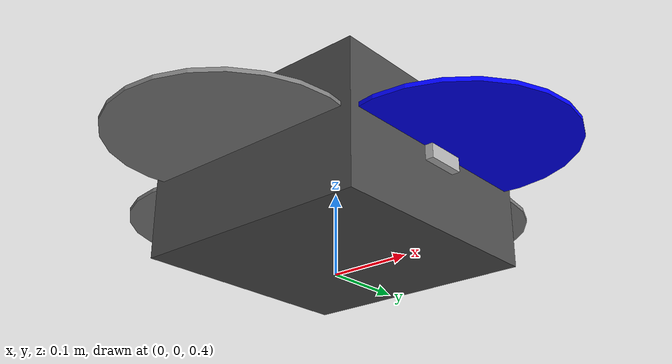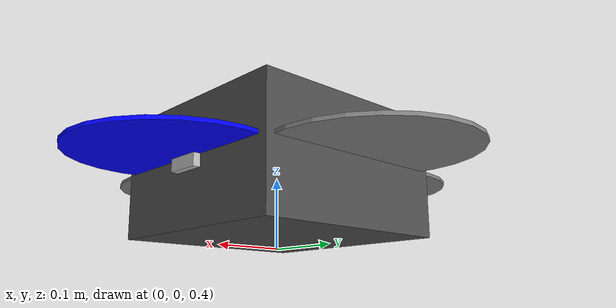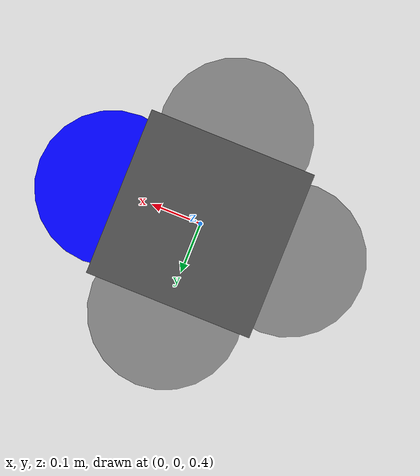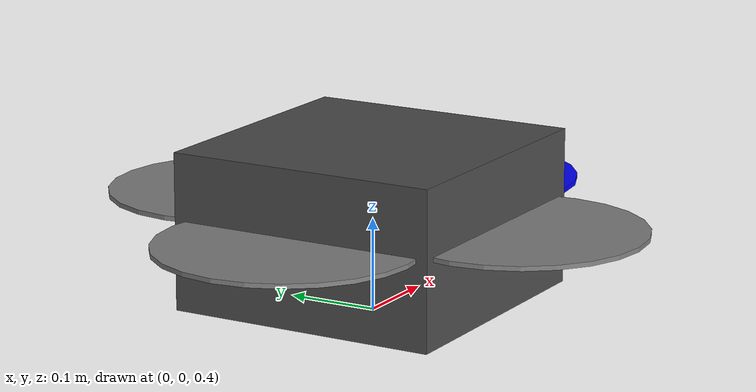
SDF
<?xml version="1.0"?>
<sdf version="1.6">
  <model name="X3">
    <pose>0 0 0.5 0 0 0</pose>
    <static>false</static>

    <link name="base_link">
      <pose>0 0 0 0 0 0</pose>
      <inertial>
        <pose>0 0 0 0 0 0</pose>
        <mass>1.4</mass>
        <inertia>
          <ixx>0.0122</ixx>
          <ixy>0.0</ixy>
          <ixz>0.0</ixz>
          <iyy>0.0122</iyy>
          <iyz>0.0</iyz>
          <izz>0.0210</izz>
        </inertia>
      </inertial>

      <visual name="base_visual">
        <pose>0 0 0 0 0 0</pose>
        <geometry>
          <box>
            <size>0.3 0.3 0.17</size>
          </box>
        </geometry>
        <material>
          <ambient>0.3 0.3 0.3 1</ambient>
          <diffuse>0.3 0.3 0.3 1</diffuse>
        </material>
      </visual>

      <collision name="base_collision">
        <pose>0 0 0 0 0 0</pose>
        <geometry>
          <box>
            <size>0.3 0.3 0.17</size>
          </box>
        </geometry>
      </collision>

      <sensor name="imu" type="imu">
        <always_on>true</always_on>
        <update_rate>200</update_rate>
        <topic>imu</topic>
      </sensor>
    </link>

    <link name="rotor_0">
      <pose>0.17 0 0.01 0 0 0</pose>
      <inertial>
        <pose>0 0 0 0 0 0</pose>
        <mass>0.005</mass>
        <inertia>
          <ixx>1.5e-6</ixx>
          <ixy>0.0</ixy>
          <ixz>0.0</ixz>
          <iyy>1.5e-6</iyy>
          <iyz>0.0</iyz>
          <izz>1.5e-6</izz>
        </inertia>
      </inertial>
      <visual name="rotor_0_visual">
        <pose>0 0 0 0 0 0</pose>
        <geometry>
          <cylinder>
            <radius>0.14</radius>
            <length>0.005</length>
          </cylinder>
        </geometry>
        <material>
          <ambient>0.0 0.0 1.0 1</ambient>
        </material>
      </visual>
    </link>

    <joint name="rotor_0_joint" type="revolute">
      <parent>base_link</parent>
      <child>rotor_0</child>
      <axis>
        <xyz>0 0 1</xyz>
        <limit>
          <lower>-1e16</lower>
          <upper>1e16</upper>
        </limit>
        <dynamics>
          <damping>0.001</damping>
        </dynamics>
      </axis>
    </joint>

    <link name="rotor_1">
      <pose>0 -0.17 0.01 0 0 0</pose>
      <inertial>
        <pose>0 0 0 0 0 0</pose>
        <mass>0.005</mass>
        <inertia>
          <ixx>1.5e-6</ixx>
          <ixy>0.0</ixy>
          <ixz>0.0</ixz>
          <iyy>1.5e-6</iyy>
          <iyz>0.0</iyz>
          <izz>1.5e-6</izz>
        </inertia>
      </inertial>
      <visual name="rotor_1_visual">
        <pose>0 0 0 0 0 0</pose>
        <geometry>
          <cylinder>
            <radius>0.14</radius>
            <length>0.005</length>
          </cylinder>
        </geometry>
        <material>
          <ambient>0.5 0.5 0.5 1</ambient>
        </material>
      </visual>
    </link>

    <joint name="rotor_1_joint" type="revolute">
      <parent>base_link</parent>
      <child>rotor_1</child>
      <axis>
        <xyz>0 0 1</xyz>
        <limit>
          <lower>-1e16</lower>
          <upper>1e16</upper>
        </limit>
        <dynamics>
          <damping>0.001</damping>
        </dynamics>
      </axis>
    </joint>

    <link name="rotor_2">
      <pose>-0.17 0 0.01 0 0 0</pose>
      <inertial>
        <pose>0 0 0 0 0 0</pose>
        <mass>0.005</mass>
        <inertia>
          <ixx>1.5e-6</ixx>
          <ixy>0.0</ixy>
          <ixz>0.0</ixz>
          <iyy>1.5e-6</iyy>
          <iyz>0.0</iyz>
          <izz>1.5e-6</izz>
        </inertia>
      </inertial>
      <visual name="rotor_2_visual">
        <pose>0 0 0 0 0 0</pose>
        <geometry>
          <cylinder>
            <radius>0.14</radius>
            <length>0.005</length>
          </cylinder>
        </geometry>
        <material>
          <ambient>0.5 0.5 0.5 1</ambient>
        </material>
      </visual>
    </link>

    <joint name="rotor_2_joint" type="revolute">
      <parent>base_link</parent>
      <child>rotor_2</child>
      <axis>
        <xyz>0 0 1</xyz>
        <limit>
          <lower>-1e16</lower>
          <upper>1e16</upper>
        </limit>
        <dynamics>
          <damping>0.001</damping>
        </dynamics>
      </axis>
    </joint>

    <link name="rotor_3">
      <pose>0 0.17 0.01 0 0 0</pose>
      <inertial>
        <pose>0 0 0 0 0 0</pose>
        <mass>0.005</mass>
        <inertia>
          <ixx>1.5e-6</ixx>
          <ixy>0.0</ixy>
          <ixz>0.0</ixz>
          <iyy>1.5e-6</iyy>
          <iyz>0.0</iyz>
          <izz>1.5e-6</izz>
        </inertia>
      </inertial>
      <visual name="rotor_3_visual">
        <pose>0 0 0 0 0 0</pose>
        <geometry>
          <cylinder>
            <radius>0.14</radius>
            <length>0.005</length>
          </cylinder>
        </geometry>
        <material>
          <ambient>0.5 0.5 0.5 1</ambient>
        </material>
      </visual>
    </link>

    <joint name="rotor_3_joint" type="revolute">
      <parent>base_link</parent>
      <child>rotor_3</child>
      <axis>
        <xyz>0 0 1</xyz>
        <limit>
          <lower>-1e16</lower>
          <upper>1e16</upper>
        </limit>
        <dynamics>
          <damping>0.001</damping>
        </dynamics>
      </axis>
    </joint>

    <link name="camera_link">
      <pose>0.15 0 0.0 0 0 0</pose>
      <inertial>
        <pose>0 0 0 0 0 0</pose>
        <mass>0.01</mass>
        <inertia>
          <ixx>0.00001</ixx>
          <ixy>0.0</ixy>
          <ixz>0.0</ixz>
          <iyy>0.00001</iyy>
          <iyz>0.0</iyz>
          <izz>0.00001</izz>
        </inertia>
      </inertial>
      <visual name="camera_visual">
        <pose>0 0 0 0 0 0</pose>
        <geometry>
          <box>
            <size>0.02 0.05 0.02</size>
          </box>
        </geometry>
      </visual>
      <sensor name="camera" type="camera">
        <camera>
          <horizontal_fov>1.047</horizontal_fov>
          <image>
            <width>640</width>
            <height>480</height>
          </image>
          <clip>
            <near>0.1</near>
            <far>100</far>
          </clip>
        </camera>
        <always_on>true</always_on>
        <update_rate>30</update_rate>
        <topic>camera/image</topic>
      </sensor>
    </link>

    <joint name="camera_joint" type="fixed">
      <parent>base_link</parent>
      <child>camera_link</child>
    </joint>

    <plugin filename="gz-sim-odometry-publisher-system" name="gz::sim::systems::OdometryPublisher">
      <odometry_topic>odometry</odometry_topic>
      <odometry_frame>world</odometry_frame>
      <robot_base_frame>base_link</robot_base_frame>
    </plugin>

    <plugin filename="gz-sim-multicopter-control-system" name="gz::sim::systems::MulticopterVelocityControl">
      <robotNamespace>X3</robotNamespace>
      <commandSubTopic>cmd_vel</commandSubTopic>
      <enableSubTopic>enable</enableSubTopic>
      <comLinkName>base_link</comLinkName>
      <velocityGain>2.7 2.7 2.7</velocityGain>
      <attitudeGain>2.0 3.0 0.15</attitudeGain>
      <angularRateGain>0.4 0.52 0.18</angularRateGain>
      <maximumLinearAcceleration>1 1 2</maximumLinearAcceleration>
      <maximumLinearVelocity>5 5 5</maximumLinearVelocity>
      <maximumAngularVelocity>3 3 3</maximumAngularVelocity>
      <linearVelocityNoiseMean>0 0 0</linearVelocityNoiseMean>
      <linearVelocityNoiseStdDev>0 0 0</linearVelocityNoiseStdDev>
      <angularVelocityNoiseMean>0 0 0</angularVelocityNoiseMean>
      <angularVelocityNoiseStdDev>0 0 0</angularVelocityNoiseStdDev>
      <rotorConfiguration>
        <rotor>
          <jointName>rotor_0_joint</jointName>
          <forceConstant>2.39e-05</forceConstant>
          <momentConstant>0.016</momentConstant>
          <direction>1</direction>
        </rotor>
        <rotor>
          <jointName>rotor_1_joint</jointName>
          <forceConstant>2.39e-05</forceConstant>
          <momentConstant>0.016</momentConstant>
          <direction>-1</direction>
        </rotor>
        <rotor>
          <jointName>rotor_2_joint</jointName>
          <forceConstant>2.39e-05</forceConstant>
          <momentConstant>0.016</momentConstant>
          <direction>1</direction>
        </rotor>
        <rotor>
          <jointName>rotor_3_joint</jointName>
          <forceConstant>2.39e-05</forceConstant>
          <momentConstant>0.016</momentConstant>
          <direction>-1</direction>
        </rotor>
      </rotorConfiguration>
    </plugin>

  </model>
</sdf>
